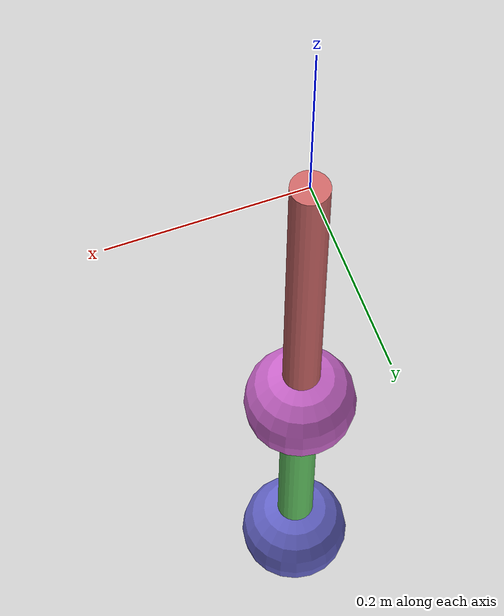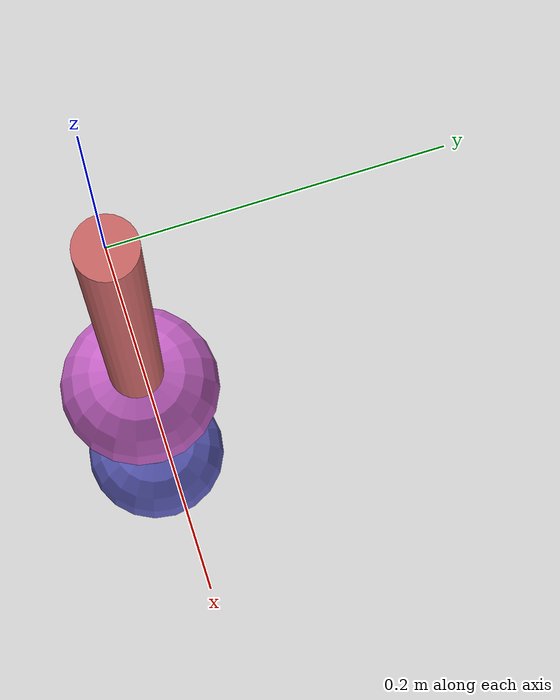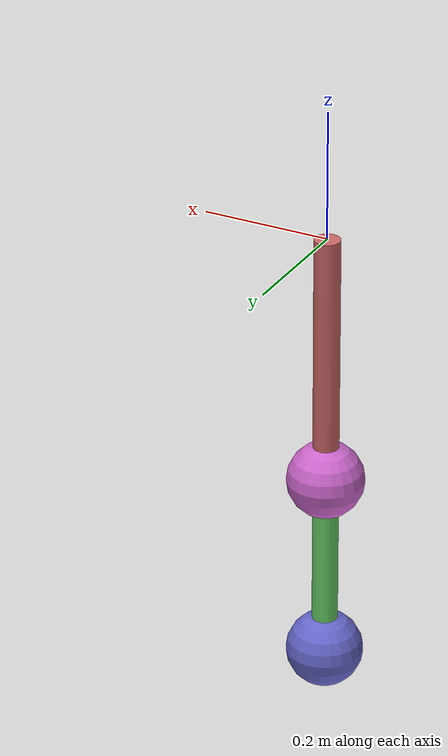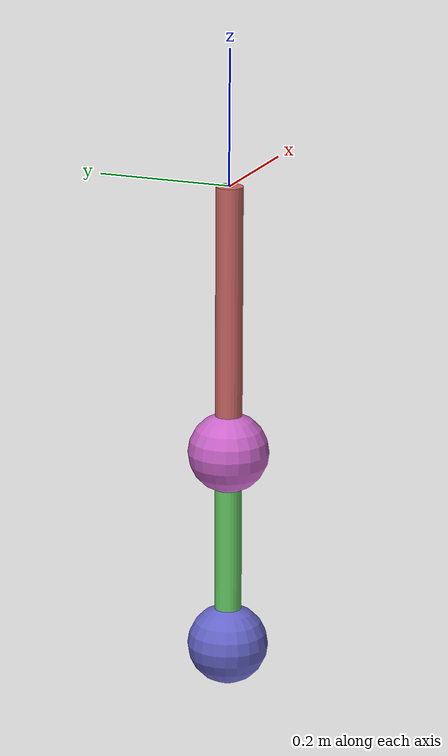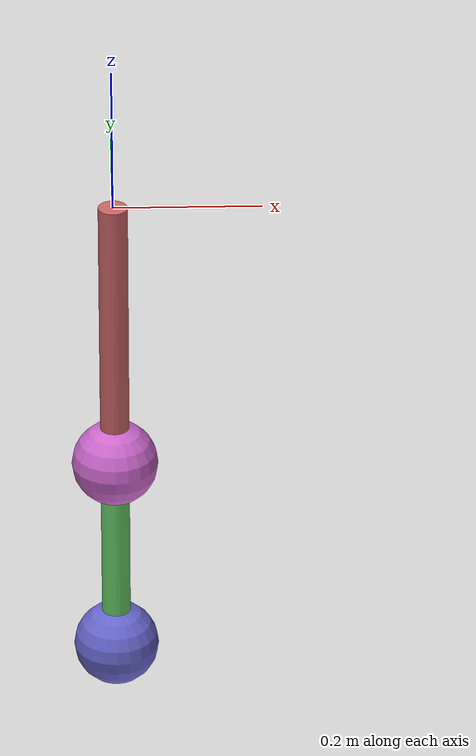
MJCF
<mujoco>
                <option gravity="0 0 -9.81" timestep="0.01"/>
                <default>
                    <joint damping="0.05"/>
                </default>
                <worldbody>
                    <body name="link1" pos="0 0 0">
                        <joint name="joint1" type="hinge" axis="1 0 0"/>
                        <geom name="rod1" type="cylinder" size="0.02 0.2"
                              pos="0 0 -0.2" rgba="0.8 0.4 0.4 1"/>
                        <body name="link2" pos="0 0 -0.4">
                            <joint name="joint2" type="hinge" axis="1 0 0"/>
                            <geom name="rod2" type="cylinder" size="0.02 0.15"
                                  pos="0 0 -0.15" rgba="0.4 0.8 0.4 1"/>
                            <geom name="mass2" type="sphere" size="0.06"
                                  pos="0 0 -0.3" mass="0.4" rgba="0.4 0.4 0.8 1"/>
                        </body>
                        <geom name="mass1" type="sphere" size="0.06"
                              pos="0 0 -0.4" mass="0.5" rgba="0.8 0.4 0.8 1"/>
                    </body>
                </worldbody>
                <actuator>
                    <motor joint="joint1" gear="1"/>
                    <motor joint="joint2" gear="1"/>
                </actuator>
            </mujoco>
